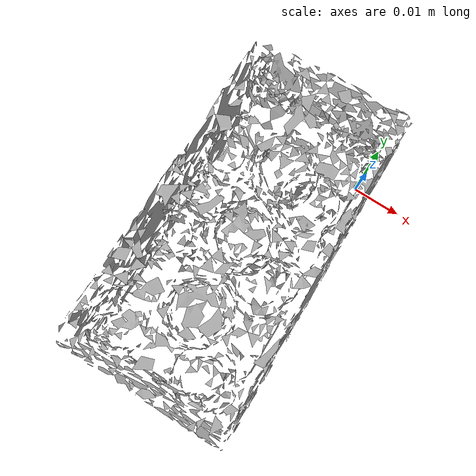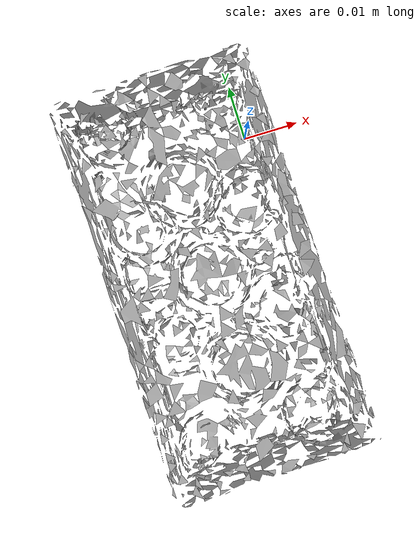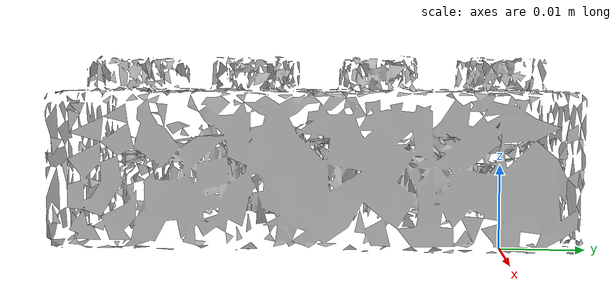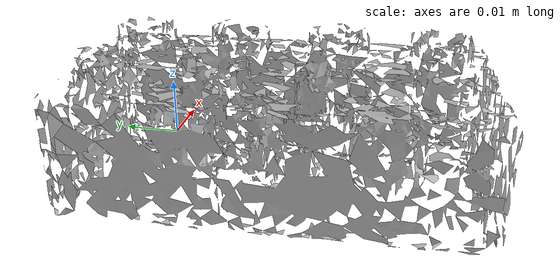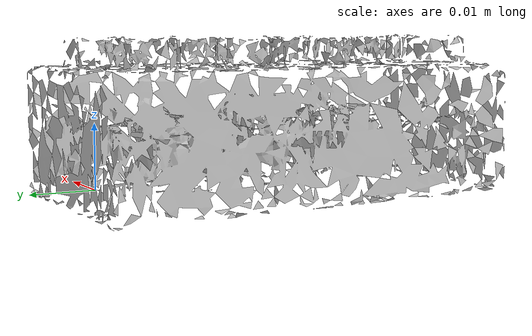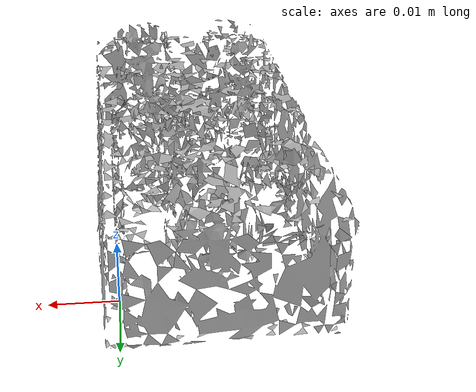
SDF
<?xml version='1.0'?>
<sdf version="1.4">
  <model name="c_lego_duplo">
    <static>false</static>
    <link name="link">
      <inertial>
        <pose>-0.013173349121726697 -0.022850899210760046 0.012672119612308666 -1.6575622910010641 -1.563530753473595 0.11787325955266192</pose>
        <mass>2.3774518535519996e-05</mass>
        <inertia>
          <ixx>1.0815410280236373e-08</ixx>
          <ixy>-5.0510666199875514e-26</ixy>
          <ixz>-7.824800170228095e-26</ixz>
          <iyy>9.17177079331474e-09</iyy>
          <iyz>-5.605371829903923e-26</iyz>
          <izz>2.8302028990555096e-09</izz>
        </inertia>
      </inertial>
      <collision name="collision">
        <geometry>
          <mesh>
            <!-- Use a downsampled mesh for collisions -->
            <uri>model://073-c_lego_duplo/downsampled.obj</uri>
	        </mesh>
        </geometry>
        <surface>
      </surface>
      </collision>
      <visual name="visual">
        <geometry>
          <mesh>
            <uri>model://073-c_lego_duplo/google_16k/textured.obj</uri>
	        </mesh>
        </geometry>
        <material>
          <script>
            <uri>model://073-c_lego_duplo/c_lego_duplo.material</uri>
            <name>c_lego_duplo</name>
          </script>
        </material>
      </visual>
    </link>
  </model>
</sdf>
